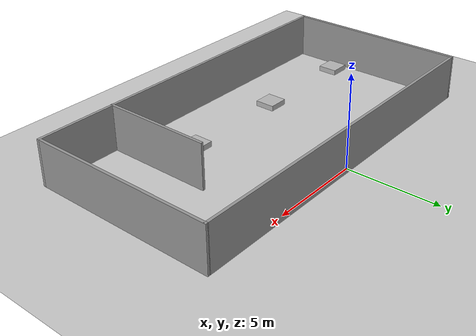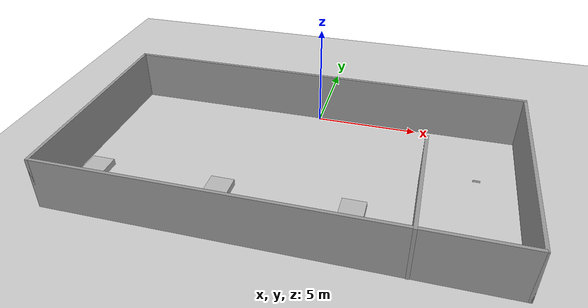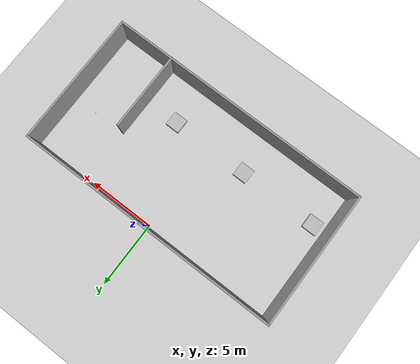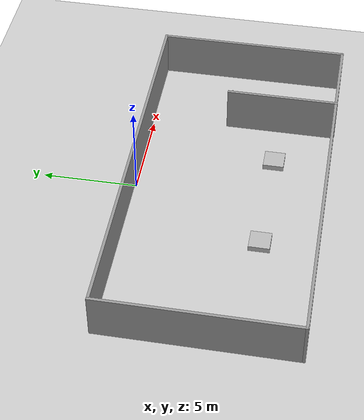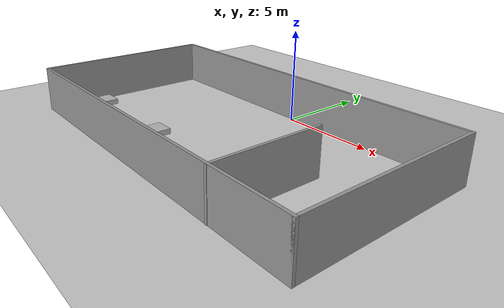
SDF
<sdf version="1.7">
 <world name="default">
  <light name="sun" type="directional">
   <pose>0 0 10 0 -0 0</pose>
   <diffuse>0.8 0.8 0.8 1</diffuse>
   <specular>0.2 0.2 0.2 1</specular>
   <attenuation>
    <range>1000</range>
    <constant>0.9</constant>
    <linear>0.01</linear>
    <quadratic>0.001</quadratic>
   </attenuation>
   <direction>-0.5 0.1 -0.9</direction>
   <spot><inner_angle>0</inner_angle><outer_angle>0</outer_angle><falloff>0</falloff></spot>
  </light>
  <model name="ground_plane">
   <static>1</static>
   <link name="link">
    <collision name="collision">
     <geometry><plane><normal>0 0 1</normal><size>100 100</size></plane></geometry>
     <surface>
      <contact><collide_bitmask>65535</collide_bitmask></contact>
      <friction><ode><mu>100</mu><mu2>50</mu2></ode></friction>
     </surface>
    </collision>
    <visual name="visual">
     <cast_shadows>0</cast_shadows>
     <geometry><plane><normal>0 0 1</normal><size>100 100</size></plane></geometry>
     <material>
      <script><uri>file://media/materials/scripts/gazebo.material</uri><name>Gazebo/Grey</name></script>
     </material>
    </visual>
   </link>
  </model>
  <gravity>0 0 -9.8</gravity>
  <magnetic_field>6e-06 2.3e-05 -4.2e-05</magnetic_field>
  <atmosphere type="adiabatic"/>
  <physics type="ode">
   <max_step_size>0.001</max_step_size>
   <real_time_factor>1</real_time_factor>
   <real_time_update_rate>1000</real_time_update_rate>
  </physics>
  <scene><ambient>0.4 0.4 0.4 1</ambient><background>0.7 0.7 0.7 1</background><shadows>1</shadows></scene>
  <spherical_coordinates>
   <surface_model>EARTH_WGS84</surface_model>
   <latitude_deg>0</latitude_deg>
   <longitude_deg>0</longitude_deg>
   <elevation>0</elevation>
   <heading_deg>0</heading_deg>
  </spherical_coordinates>
  <model name="Untitled">
   <pose>-0.021396 -4.89472 0 0 -0 0</pose>
   <link name="Wall_10">
    <collision name="Wall_10_Collision">
     <geometry><box><size>20 0.15 2.5</size></box></geometry>
     <pose>0 0 1.25 0 -0 0</pose>
    </collision>
    <visual name="Wall_10_Visual">
     <pose>0 0 1.25 0 -0 0</pose>
     <geometry><box><size>20 0.15 2.5</size></box></geometry>
     <material>
      <script><uri>file://media/materials/scripts/gazebo.material</uri><name>Gazebo/Grey</name></script>
      <ambient>1 1 1 1</ambient>
     </material>
     <meta><layer>0</layer></meta>
    </visual>
    <pose>0 -5.04012 0 0 -0 0</pose>
   </link>
   <link name="Wall_12">
    <collision name="Wall_12_Collision">
     <geometry><box><size>10.25 0.15 2.5</size></box></geometry>
     <pose>0 0 1.25 0 -0 0</pose>
    </collision>
    <visual name="Wall_12_Visual">
     <pose>0 0 1.25 0 -0 0</pose>
     <geometry><box><size>10.25 0.15 2.5</size></box></geometry>
     <material>
      <script><uri>file://media/materials/scripts/gazebo.material</uri><name>Gazebo/Grey</name></script>
      <ambient>1 1 1 1</ambient>
     </material>
     <meta><layer>0</layer></meta>
    </visual>
    <pose>9.925 0.00988 0 0 -0 -1.5708</pose>
   </link>
   <link name="Wall_19">
    <collision name="Wall_19_Collision">
     <geometry><box><size>6 0.15 2.5</size></box></geometry>
     <pose>0 0 1.25 0 -0 0</pose>
    </collision>
    <visual name="Wall_19_Visual">
     <pose>0 0 1.25 0 -0 0</pose>
     <geometry><box><size>6 0.15 2.5</size></box></geometry>
     <material>
      <script><uri>file://media/materials/scripts/gazebo.material</uri><name>Gazebo/Grey</name></script>
      <ambient>1 1 1 1</ambient>
     </material>
     <meta><layer>0</layer></meta>
    </visual>
    <pose>5.6272 -2.13488 0 0 -0 1.5708</pose>
   </link>
   <link name="Wall_5">
    <collision name="Wall_5_Collision">
     <geometry><box><size>10.25 0.15 2.5</size></box></geometry>
     <pose>0 0 1.25 0 -0 0</pose>
    </collision>
    <visual name="Wall_5_Visual">
     <pose>0 0 1.25 0 -0 0</pose>
     <geometry><box><size>10.25 0.15 2.5</size></box></geometry>
     <material>
      <script><uri>file://media/materials/scripts/gazebo.material</uri><name>Gazebo/Grey</name></script>
      <ambient>1 1 1 1</ambient>
     </material>
     <meta><layer>0</layer></meta>
    </visual>
    <pose>-9.925 0.00988 0 0 -0 1.5708</pose>
   </link>
   <link name="Wall_6">
    <collision name="Wall_6_Collision">
     <geometry><box><size>20 0.15 2.5</size></box></geometry>
     <pose>0 0 1.25 0 -0 0</pose>
    </collision>
    <visual name="Wall_6_Visual">
     <pose>0 0 1.25 0 -0 0</pose>
     <geometry><box><size>20 0.15 2.5</size></box></geometry>
     <material>
      <script><uri>file://media/materials/scripts/gazebo.material</uri><name>Gazebo/Grey</name></script>
      <ambient>1 1 1 1</ambient>
     </material>
     <meta><layer>0</layer></meta>
    </visual>
    <pose>0 5.05988 0 0 -0 0</pose>
   </link>
   <static>1</static>
  </model>
  <model name="pallet1">
   <link name="link_1">
    <inertial>
     <mass>1</mass>
     <inertia><ixx>0.166667</ixx><iyy>0.166667</iyy><izz>0.166667</izz></inertia>
    </inertial>
    <pose>3 -7 0.15 0 0 0</pose>
    <visual name="visual"><geometry><box><size>1.1 1.1 0.3</size></box></geometry></visual>
    <collision name="collision"><geometry><box><size>1.1 1.1 0.3</size></box></geometry></collision>
   </link>
   <static>0</static>
  </model>
  <model name="pallet3">
   <link name="link_1">
    <inertial>
     <mass>1</mass>
     <inertia><ixx>0.166667</ixx><iyy>0.166667</iyy><izz>0.166667</izz></inertia>
    </inertial>
    <pose>-3 -7 0.15 0 0 0</pose>
    <visual name="visual"><geometry><box><size>1.1 1.1 0.3</size></box></geometry></visual>
    <collision name="collision"><geometry><box><size>1.1 1.1 0.3</size></box></geometry></collision>
   </link>
   <static>0</static>
  </model>
  <model name="pallet5">
   <link name="link_1">
    <inertial>
     <mass>1</mass>
     <inertia><ixx>0.166667</ixx><iyy>0.166667</iyy><izz>0.166667</izz></inertia>
    </inertial>
    <pose>-9 -7 0.15 0 0 0</pose>
    <visual name="visual"><geometry><box><size>1.1 1.1 0.3</size></box></geometry></visual>
    <collision name="collision"><geometry><box><size>1.1 1.1 0.3</size></box></geometry></collision>
   </link>
   <static>0</static>
  </model>
  <model name="number">
   <link name="link_1">
    <inertial>
     <mass>1</mass>
     <inertia>
      <ixx>0.166667</ixx>
      <ixy>0</ixy>
      <ixz>0</ixz>
      <iyy>0.166667</iyy>
      <iyz>0</iyz>
      <izz>0.166667</izz>
     </inertia>
    </inertial>
    <pose>8 -4 0.45 0 0 0</pose>
    <visual name="visual">
     <geometry><box><size>0.332 0.000000000000001 0.1</size></box></geometry>
     <material>
      <lighting>1</lighting>
      <script>
       <uri>file://usr/share/gazebo-11/media/materials/scripts/aruco.material</uri>
       <name>Gazebo/num</name>
      </script>
      <shader type="pixel"/>
     </material>
    </visual>
    <collision name="collision"><geometry><box><size>0.332 0.001 0.1</size></box></geometry></collision>
   </link>
   <static>1</static>
  </model>
 </world>
</sdf>
